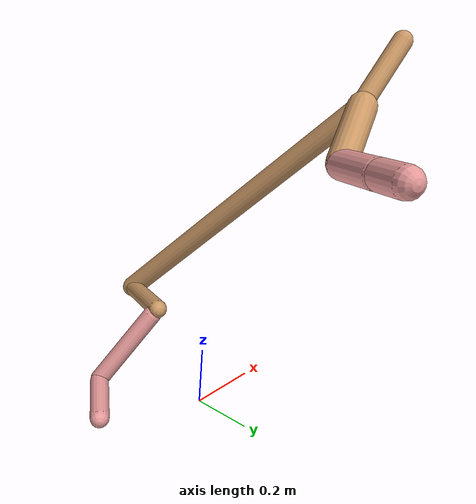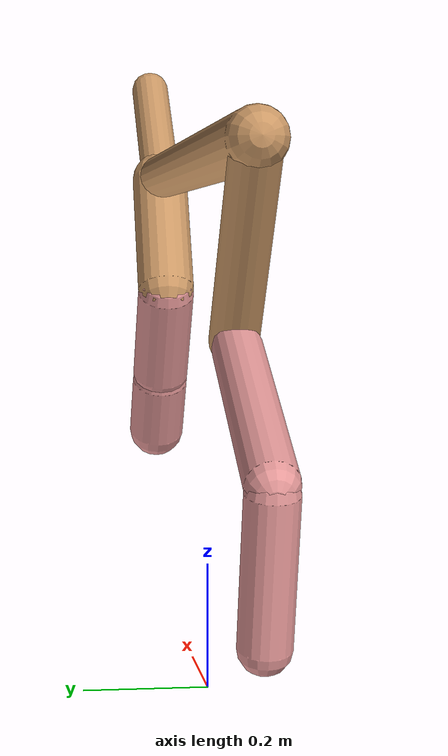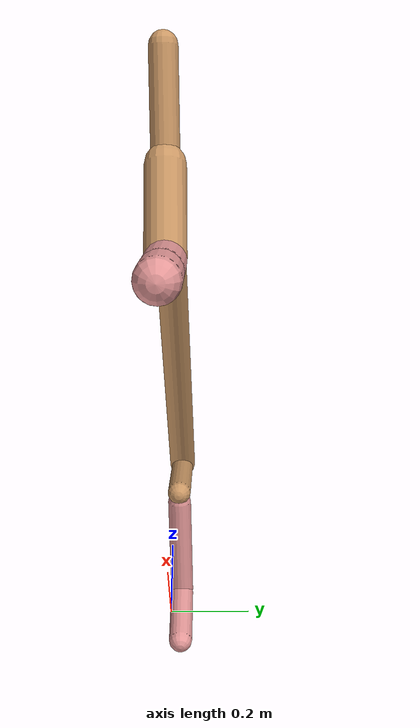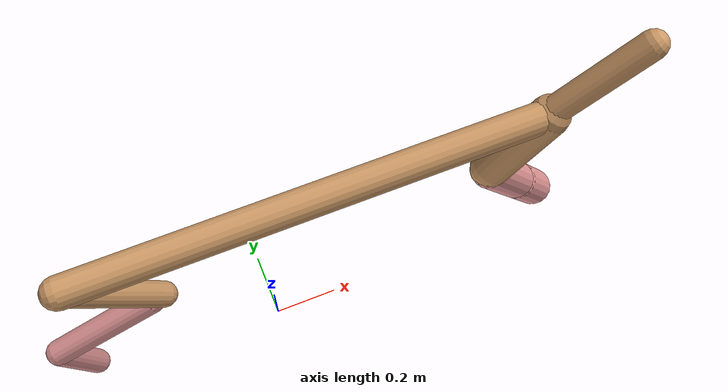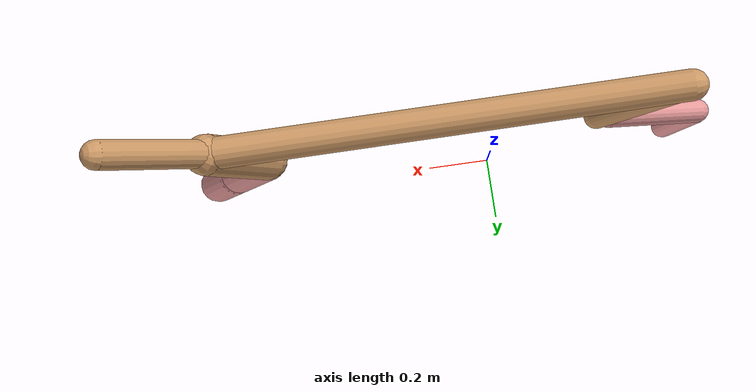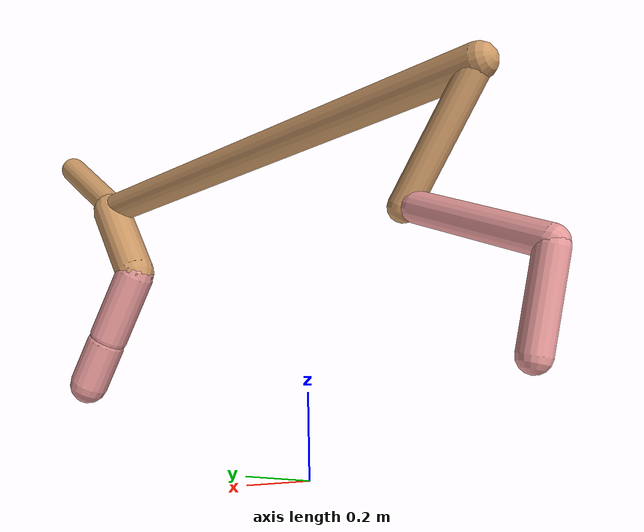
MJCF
<mujoco model="cheetah">
  <compiler angle="radian" coordinate="local" inertiafromgeom="true" settotalmass="14" />
  <default>
    <joint armature=".1" damping=".01" limited="true" solimplimit="0 .8 .03" solreflimit=".02 1" stiffness="8" />
    <geom conaffinity="0" condim="3" contype="1" friction="0.8 .1 .1" rgba="0.8 0.6 .4 1" solimp="0.0 0.8 0.01" solref="0.02 1" />
    <motor ctrllimited="true" ctrlrange="-1 1" />
  </default>
  <size nstack="300000" nuser_geom="1" />
  <option gravity="0 0 -9.81" timestep="0.01" />
  <worldbody>
    <body name="torso" pos="0.0 0.0 0.8490157917048726">
      <joint armature="0" axis="1 0 0" damping="0" limited="false" name="ignorex" pos="0 0 0" stiffness="0" type="slide" />
      <joint armature="0" axis="0 0 1" damping="0" limited="false" name="ignorez" pos="0 0 0" stiffness="0" type="slide" />
      <joint armature="0" axis="0 1 0" damping="0" limited="false" name="ignorey" pos="0 0 0" stiffness="0" type="hinge" />
      <geom fromto="-0.5 0.0 0.0 0.7918919574245682 0.0 0.0" name="torso" size="0.04336207007859295" type="capsule" />
      <geom axisangle="0 1 0 .87" name="head" pos="0.8918919574245682 0.0 0.1" size="0.0384786244726823 0.15" type="capsule" />

      <body name="bthigh" pos="-.5 0 0">
        <joint axis="0 1 0" damping="6" name="bthigh" pos="0 0 0" range="-.52 1.05" stiffness="240" type="hinge" />
        <geom axisangle="0 1 0 -3.8" name="bthigh" pos="0.11116457381538525 0.0 -0.14451394596000083" size="0.036476924817763316 0.16331126254000555" type="capsule" />
        <body name="bshin" pos="0.1823291476307705 0.0 -0.27902789192000166">
          <joint axis="0 1 0" damping="4.5" name="bshin" pos="0 0 0" range="-.785 .785" stiffness="180" type="hinge" />
          <geom axisangle="0 1 0 -2.03" name="bshin" pos="-0.15694285287998533 0.0 -0.07847142643999266" rgba="0.9 0.6 0.6 1" size="0.036476924817763316 0.16894268538621263" type="capsule" />
          <body name="bfoot" pos="-0.31388570575997066 0.0 -0.15694285287998533">
            <joint axis="0 1 0" damping="3" name="bfoot" pos="0 0 0" range="-.4 .785" stiffness="120" type="hinge" />
            <geom axisangle="0 1 0 -.27" name="bfoot" pos="0.03350744706821086 0.0 -0.10834074552054847" rgba="0.9 0.6 0.6 1" size="0.036476924817763316 0.10587074950869325" type="capsule" />
            <inertial mass="10" />
          </body>
        </body>
      </body>
      <body name="fthigh" pos="0.7918919574245682 0.0 0.0">
        <joint axis="0 1 0" damping="4.5" name="fthigh" pos="0 0 0" range="-1.5 0.8" stiffness="180" type="hinge" />
        <geom axisangle="0 1 0 .52" name="fthigh" pos="-0.06712473163706162 0.0 -0.11507096852067704" size="0.05546007786820086 0.12729364218760592" type="capsule" />
        <body name="fshin" pos="-0.13424946327412324 0.0 -0.23014193704135408">
          <joint axis="0 1 0" damping="3" name="fshin" pos="0 0 0" range="-1.2 1.1" stiffness="120" type="hinge" />
          <geom axisangle="0 1 0 -.6" name="fshin" pos="0.062337233299418454 0.0 -0.08631309226073323" rgba="0.9 0.6 0.6 1" size="0.05546007786820086 0.10145207572846786" type="capsule" />
          <body name="ffoot" pos="0.12467446659883691 0.0 -0.17262618452146647">
            <joint axis="0 1 0" damping="1.5" name="ffoot" pos="0 0 0" range="-3.1 -0.3" stiffness="60" type="hinge" />
            <geom axisangle="0 1 0 -.6" name="ffoot" pos="0.043375917733787794 0.0 -0.06747364980811435" rgba="0.9 0.6 0.6 1" size="0.05546007786820086 0.06699665378295049" type="capsule" />
            <inertial mass="10" />
          </body>
        </body>
      </body>
    </body>
  </worldbody>
  <actuator>
    <motor gear="120" joint="bthigh" name="bthigh" />
    <motor gear="90" joint="bshin" name="bshin" />
    <motor gear="60" joint="bfoot" name="bfoot" />
    <motor gear="120" joint="fthigh" name="fthigh" />
    <motor gear="60" joint="fshin" name="fshin" />
    <motor gear="30" joint="ffoot" name="ffoot" />
  </actuator>
</mujoco>
